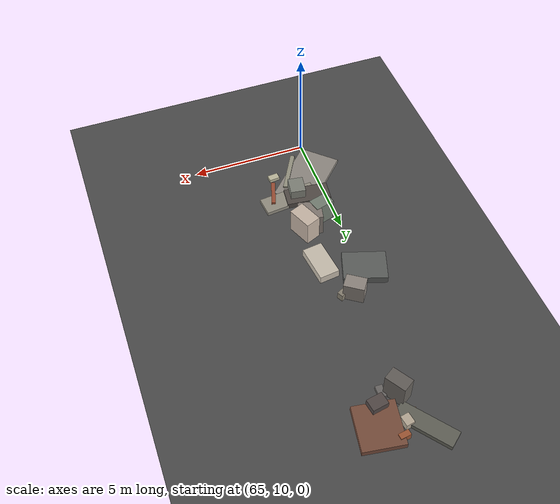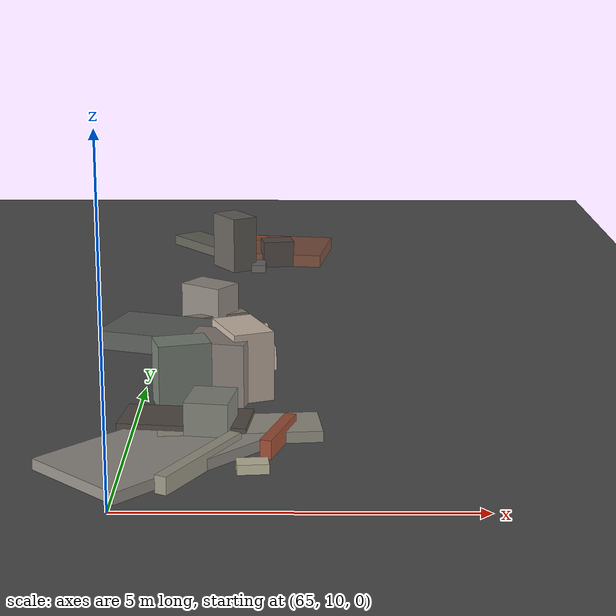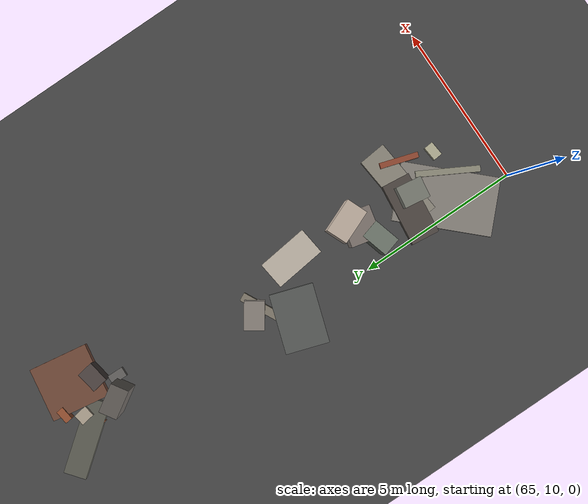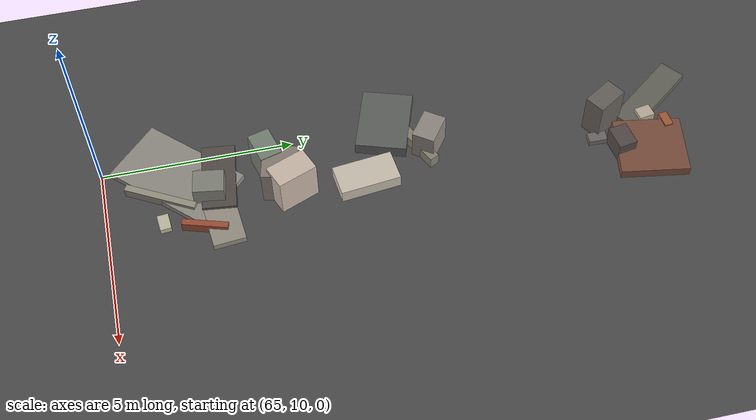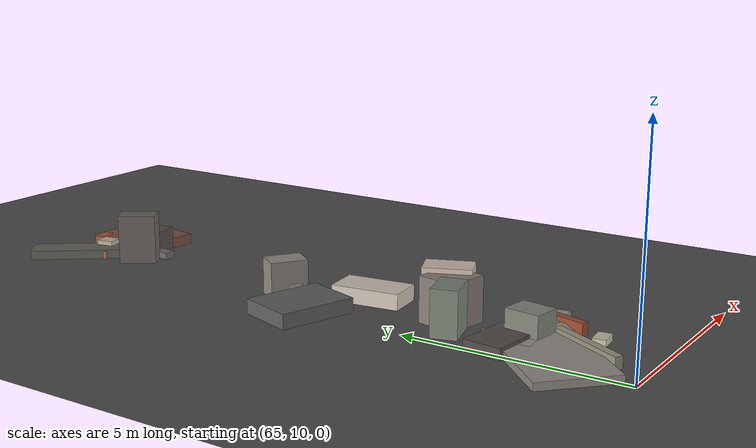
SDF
<sdf version="1.6">
 <world name="navitas_arena">
  <model name="ground_plane">
   <static>true</static>
   <link name="link">
    <collision name="collision">
     <geometry><plane><normal>0 0 1</normal><size>400 400</size></plane></geometry>
     <surface><friction><ode><mu>0.800</mu><mu2>0.800</mu2></ode></friction></surface>
    </collision>
    <visual name="visual">
     <cast_shadows>false</cast_shadows>
     <geometry><plane><normal>0 0 1</normal><size>400 400</size></plane></geometry>
     <material>
      <specular>0.04 0.04 0.04 1</specular>
      <script>
       <uri>file://media/materials/scripts/navitas_asphalt.material</uri>
       <name>Navitas/RealArenaAsphalt</name>
      </script>
     </material>
    </visual>
   </link>
  </model>
  <model name="deb_zor_38">
   <static>true</static>
   <pose>66.263 14.113 0.000 0 0 0</pose>
   <link name="link">
    <collision name="col_0">
     <pose>-0.014 0.450 0.514 0.000 0.000 1.350</pose>
     <geometry><box><size>0.908 0.976 1.027</size></box></geometry>
    </collision>
    <visual name="vis_0">
     <pose>-0.014 0.450 0.514 0.000 0.000 1.350</pose>
     <geometry><box><size>0.908 0.976 1.027</size></box></geometry>
     <material>
      <ambient>0.49 0.45 0.43 1</ambient>
      <diffuse>0.53 0.49 0.46 1</diffuse>
      <specular>0.05 0.05 0.045 1</specular>
     </material>
    </visual>
    <collision name="col_1">
     <pose>0.321 0.701 0.568 0.000 0.000 1.958</pose>
     <geometry><box><size>1.072 0.663 1.136</size></box></geometry>
    </collision>
    <visual name="vis_1">
     <pose>0.321 0.701 0.568 0.000 0.000 1.958</pose>
     <geometry><box><size>1.072 0.663 1.136</size></box></geometry>
     <material>
      <ambient>0.74 0.67 0.62 1</ambient>
      <diffuse>0.80 0.73 0.67 1</diffuse>
      <specular>0.05 0.05 0.045 1</specular>
     </material>
    </visual>
    <collision name="col_2">
     <pose>-0.027 0.752 0.163 0.000 0.000 -0.057</pose>
     <geometry><box><size>0.213 0.409 0.326</size></box></geometry>
    </collision>
    <visual name="vis_2">
     <pose>-0.027 0.752 0.163 0.000 0.000 -0.057</pose>
     <geometry><box><size>0.213 0.409 0.326</size></box></geometry>
     <material>
      <ambient>0.66 0.41 0.30 1</ambient>
      <diffuse>0.72 0.44 0.33 1</diffuse>
      <specular>0.05 0.05 0.045 1</specular>
     </material>
    </visual>
    <collision name="col_3">
     <pose>-0.617 0.162 0.523 0.000 0.000 0.273</pose>
     <geometry><box><size>0.843 0.582 1.046</size></box></geometry>
    </collision>
    <visual name="vis_3">
     <pose>-0.617 0.162 0.523 0.000 0.000 0.273</pose>
     <geometry><box><size>0.843 0.582 1.046</size></box></geometry>
     <material>
      <ambient>0.44 0.47 0.42 1</ambient>
      <diffuse>0.47 0.51 0.46 1</diffuse>
      <specular>0.05 0.05 0.045 1</specular>
     </material>
    </visual>
   </link>
  </model>
  <model name="deb_zor_51">
   <static>true</static>
   <pose>66.531 23.766 0.000 0 0 0</pose>
   <link name="link">
    <collision name="col_0">
     <pose>0.085 -0.819 0.080 0.000 0.000 1.551</pose>
     <geometry><box><size>0.497 0.290 0.160</size></box></geometry>
    </collision>
    <visual name="vis_0">
     <pose>0.085 -0.819 0.080 0.000 0.000 1.551</pose>
     <geometry><box><size>0.497 0.290 0.160</size></box></geometry>
     <material>
      <ambient>0.39 0.38 0.37 1</ambient>
      <diffuse>0.42 0.41 0.40 1</diffuse>
      <specular>0.05 0.05 0.045 1</specular>
     </material>
    </visual>
    <collision name="col_1">
     <pose>0.718 0.444 0.129 0.000 0.000 1.413</pose>
     <geometry><box><size>1.799 1.667 0.257</size></box></geometry>
    </collision>
    <visual name="vis_1">
     <pose>0.718 0.444 0.129 0.000 0.000 1.413</pose>
     <geometry><box><size>1.799 1.667 0.257</size></box></geometry>
     <material>
      <ambient>0.45 0.28 0.22 1</ambient>
      <diffuse>0.48 0.31 0.24 1</diffuse>
      <specular>0.05 0.05 0.045 1</specular>
     </material>
    </visual>
    <collision name="col_2">
     <pose>0.470 -0.287 0.275 0.000 0.000 0.168</pose>
     <geometry><box><size>0.660 0.502 0.550</size></box></geometry>
    </collision>
    <visual name="vis_2">
     <pose>0.470 -0.287 0.275 0.000 0.000 0.168</pose>
     <geometry><box><size>0.660 0.502 0.550</size></box></geometry>
     <material>
      <ambient>0.30 0.27 0.26 1</ambient>
      <diffuse>0.33 0.29 0.28 1</diffuse>
      <specular>0.05 0.05 0.045 1</specular>
     </material>
    </visual>
    <collision name="col_3">
     <pose>0.202 0.413 0.091 0.000 0.000 0.106</pose>
     <geometry><box><size>2.108 0.191 0.182</size></box></geometry>
    </collision>
    <visual name="vis_3">
     <pose>0.202 0.413 0.091 0.000 0.000 0.106</pose>
     <geometry><box><size>2.108 0.191 0.182</size></box></geometry>
     <material>
      <ambient>0.62 0.38 0.26 1</ambient>
      <diffuse>0.67 0.41 0.28 1</diffuse>
      <specular>0.05 0.05 0.045 1</specular>
     </material>
    </visual>
   </link>
  </model>
  <model name="deb_zor_81">
   <static>true</static>
   <pose>66.184 17.626 0.000 0 0 0</pose>
   <link name="link">
    <collision name="col_0">
     <pose>-0.636 0.461 0.164 0.000 0.000 0.466</pose>
     <geometry><box><size>2.081 0.260 0.328</size></box></geometry>
    </collision>
    <visual name="vis_0">
     <pose>-0.636 0.461 0.164 0.000 0.000 0.466</pose>
     <geometry><box><size>2.081 0.260 0.328</size></box></geometry>
     <material>
      <ambient>0.50 0.47 0.42 1</ambient>
      <diffuse>0.54 0.51 0.45 1</diffuse>
      <specular>0.05 0.05 0.045 1</specular>
     </material>
    </visual>
    <collision name="col_1">
     <pose>0.404 -0.907 0.183 0.000 0.000 1.689</pose>
     <geometry><box><size>1.591 0.853 0.366</size></box></geometry>
    </collision>
    <visual name="vis_1">
     <pose>0.404 -0.907 0.183 0.000 0.000 1.689</pose>
     <geometry><box><size>1.591 0.853 0.366</size></box></geometry>
     <material>
      <ambient>0.74 0.71 0.64 1</ambient>
      <diffuse>0.80 0.76 0.70 1</diffuse>
      <specular>0.05 0.05 0.045 1</specular>
     </material>
    </visual>
    <collision name="col_2">
     <pose>-1.197 -0.100 0.169 0.000 0.000 2.825</pose>
     <geometry><box><size>1.813 1.341 0.338</size></box></geometry>
    </collision>
    <visual name="vis_2">
     <pose>-1.197 -0.100 0.169 0.000 0.000 2.825</pose>
     <geometry><box><size>1.813 1.341 0.338</size></box></geometry>
     <material>
      <ambient>0.34 0.35 0.34 1</ambient>
      <diffuse>0.37 0.38 0.37 1</diffuse>
      <specular>0.05 0.05 0.045 1</specular>
     </material>
    </visual>
    <collision name="col_3">
     <pose>-0.349 0.916 0.428 0.000 0.000 0.958</pose>
     <geometry><box><size>0.603 0.852 0.856</size></box></geometry>
    </collision>
    <visual name="vis_3">
     <pose>-0.349 0.916 0.428 0.000 0.000 0.958</pose>
     <geometry><box><size>0.603 0.852 0.856</size></box></geometry>
     <material>
      <ambient>0.53 0.50 0.47 1</ambient>
      <diffuse>0.57 0.54 0.51 1</diffuse>
      <specular>0.05 0.05 0.045 1</specular>
     </material>
    </visual>
    <collision name="col_4">
     <pose>-0.940 -0.363 0.099 0.000 0.000 1.712</pose>
     <geometry><box><size>0.463 0.361 0.199</size></box></geometry>
    </collision>
    <visual name="vis_4">
     <pose>-0.940 -0.363 0.099 0.000 0.000 1.712</pose>
     <geometry><box><size>0.463 0.361 0.199</size></box></geometry>
     <material>
      <ambient>0.51 0.53 0.48 1</ambient>
      <diffuse>0.55 0.58 0.51 1</diffuse>
      <specular>0.05 0.05 0.045 1</specular>
     </material>
    </visual>
    <collision name="col_5">
     <pose>-1.037 -0.311 0.159 0.000 0.000 2.145</pose>
     <geometry><box><size>0.408 0.187 0.318</size></box></geometry>
    </collision>
    <visual name="vis_5">
     <pose>-1.037 -0.311 0.159 0.000 0.000 2.145</pose>
     <geometry><box><size>0.408 0.187 0.318</size></box></geometry>
     <material>
      <ambient>0.67 0.64 0.55 1</ambient>
      <diffuse>0.72 0.69 0.59 1</diffuse>
      <specular>0.05 0.05 0.045 1</specular>
     </material>
    </visual>
    <collision name="col_6">
     <pose>-0.909 -0.117 0.151 0.000 0.000 0.991</pose>
     <geometry><box><size>1.229 0.162 0.302</size></box></geometry>
    </collision>
    <visual name="vis_6">
     <pose>-0.909 -0.117 0.151 0.000 0.000 0.991</pose>
     <geometry><box><size>1.229 0.162 0.302</size></box></geometry>
     <material>
      <ambient>0.58 0.31 0.19 1</ambient>
      <diffuse>0.62 0.34 0.20 1</diffuse>
      <specular>0.05 0.05 0.045 1</specular>
     </material>
    </visual>
   </link>
  </model>
  <model name="deb_zor_129">
   <static>true</static>
   <pose>66.233 23.984 0.000 0 0 0</pose>
   <link name="link">
    <collision name="col_0">
     <pose>-0.144 -0.776 0.581 0.000 0.000 2.134</pose>
     <geometry><box><size>0.881 0.554 1.162</size></box></geometry>
    </collision>
    <visual name="vis_0">
     <pose>-0.144 -0.776 0.581 0.000 0.000 2.134</pose>
     <geometry><box><size>0.881 0.554 1.162</size></box></geometry>
     <material>
      <ambient>0.37 0.35 0.33 1</ambient>
      <diffuse>0.40 0.38 0.36 1</diffuse>
      <specular>0.05 0.05 0.045 1</specular>
     </material>
    </visual>
    <collision name="col_1">
     <pose>-0.631 0.736 0.106 0.000 0.000 2.235</pose>
     <geometry><box><size>2.347 0.691 0.212</size></box></geometry>
    </collision>
    <visual name="vis_1">
     <pose>-0.631 0.736 0.106 0.000 0.000 2.235</pose>
     <geometry><box><size>2.347 0.691 0.212</size></box></geometry>
     <material>
      <ambient>0.36 0.37 0.33 1</ambient>
      <diffuse>0.39 0.39 0.35 1</diffuse>
      <specular>0.05 0.05 0.045 1</specular>
     </material>
    </visual>
    <collision name="col_2">
     <pose>-0.266 0.560 0.078 0.000 0.000 2.288</pose>
     <geometry><box><size>2.115 0.319 0.156</size></box></geometry>
    </collision>
    <visual name="vis_2">
     <pose>-0.266 0.560 0.078 0.000 0.000 2.288</pose>
     <geometry><box><size>2.115 0.319 0.156</size></box></geometry>
     <material>
      <ambient>0.41 0.39 0.38 1</ambient>
      <diffuse>0.44 0.42 0.41 1</diffuse>
      <specular>0.05 0.05 0.045 1</specular>
     </material>
    </visual>
    <collision name="col_3">
     <pose>0.304 0.877 0.150 0.000 0.000 3.266</pose>
     <geometry><box><size>0.427 0.230 0.300</size></box></geometry>
    </collision>
    <visual name="vis_3">
     <pose>0.304 0.877 0.150 0.000 0.000 3.266</pose>
     <geometry><box><size>0.427 0.230 0.300</size></box></geometry>
     <material>
      <ambient>0.59 0.33 0.19 1</ambient>
      <diffuse>0.64 0.35 0.21 1</diffuse>
      <specular>0.05 0.05 0.045 1</specular>
     </material>
    </visual>
    <collision name="col_4">
     <pose>-0.028 0.393 0.161 0.000 0.000 3.307</pose>
     <geometry><box><size>0.354 0.425 0.322</size></box></geometry>
    </collision>
    <visual name="vis_4">
     <pose>-0.028 0.393 0.161 0.000 0.000 3.307</pose>
     <geometry><box><size>0.354 0.425 0.322</size></box></geometry>
     <material>
      <ambient>0.68 0.63 0.56 1</ambient>
      <diffuse>0.73 0.68 0.60 1</diffuse>
      <specular>0.05 0.05 0.045 1</specular>
     </material>
    </visual>
   </link>
  </model>
  <model name="deb_zor_380">
   <static>true</static>
   <pose>66.233 12.127 0.000 0 0 0</pose>
   <link name="link">
    <collision name="col_0">
     <pose>0.609 -0.684 0.074 0.000 0.000 0.095</pose>
     <geometry><box><size>0.453 0.290 0.148</size></box></geometry>
    </collision>
    <visual name="vis_0">
     <pose>0.609 -0.684 0.074 0.000 0.000 0.095</pose>
     <geometry><box><size>0.453 0.290 0.148</size></box></geometry>
     <material>
      <ambient>0.70 0.68 0.58 1</ambient>
      <diffuse>0.76 0.74 0.63 1</diffuse>
      <specular>0.05 0.05 0.045 1</specular>
     </material>
    </visual>
    <collision name="col_1">
     <pose>-0.784 -0.194 0.086 0.000 0.000 0.807</pose>
     <geometry><box><size>2.995 1.780 0.171</size></box></geometry>
    </collision>
    <visual name="vis_1">
     <pose>-0.784 -0.194 0.086 0.000 0.000 0.807</pose>
     <geometry><box><size>2.995 1.780 0.171</size></box></geometry>
     <material>
      <ambient>0.52 0.51 0.48 1</ambient>
      <diffuse>0.57 0.55 0.52 1</diffuse>
      <specular>0.05 0.05 0.045 1</specular>
     </material>
    </visual>
    <collision name="col_2">
     <pose>-0.126 -0.683 0.134 0.000 0.000 1.065</pose>
     <geometry><box><size>1.927 0.186 0.268</size></box></geometry>
    </collision>
    <visual name="vis_2">
     <pose>-0.126 -0.683 0.134 0.000 0.000 1.065</pose>
     <geometry><box><size>1.927 0.186 0.268</size></box></geometry>
     <material>
      <ambient>0.55 0.55 0.48 1</ambient>
      <diffuse>0.60 0.59 0.52 1</diffuse>
      <specular>0.05 0.05 0.045 1</specular>
     </material>
    </visual>
    <collision name="col_3">
     <pose>0.366 0.746 0.086 0.000 0.000 0.098</pose>
     <geometry><box><size>2.421 0.845 0.172</size></box></geometry>
    </collision>
    <visual name="vis_3">
     <pose>0.366 0.746 0.086 0.000 0.000 0.098</pose>
     <geometry><box><size>2.421 0.845 0.172</size></box></geometry>
     <material>
      <ambient>0.55 0.53 0.48 1</ambient>
      <diffuse>0.59 0.57 0.52 1</diffuse>
      <specular>0.05 0.05 0.045 1</specular>
     </material>
    </visual>
    <collision name="col_4">
     <pose>-0.428 0.856 0.126 0.000 0.000 -0.113</pose>
     <geometry><box><size>1.931 0.875 0.252</size></box></geometry>
    </collision>
    <visual name="vis_4">
     <pose>-0.428 0.856 0.126 0.000 0.000 -0.113</pose>
     <geometry><box><size>1.931 0.875 0.252</size></box></geometry>
     <material>
      <ambient>0.30 0.28 0.26 1</ambient>
      <diffuse>0.33 0.30 0.28 1</diffuse>
      <specular>0.05 0.05 0.045 1</specular>
     </material>
    </visual>
    <collision name="col_5">
     <pose>-0.039 0.585 0.338 0.000 0.000 1.423</pose>
     <geometry><box><size>0.794 0.656 0.676</size></box></geometry>
    </collision>
    <visual name="vis_5">
     <pose>-0.039 0.585 0.338 0.000 0.000 1.423</pose>
     <geometry><box><size>0.794 0.656 0.676</size></box></geometry>
     <material>
      <ambient>0.47 0.48 0.44 1</ambient>
      <diffuse>0.51 0.52 0.48 1</diffuse>
      <specular>0.05 0.05 0.045 1</specular>
     </material>
    </visual>
    <collision name="col_6">
     <pose>0.955 0.327 0.142 0.000 0.000 1.270</pose>
     <geometry><box><size>1.183 0.170 0.284</size></box></geometry>
    </collision>
    <visual name="vis_6">
     <pose>0.955 0.327 0.142 0.000 0.000 1.270</pose>
     <geometry><box><size>1.183 0.170 0.284</size></box></geometry>
     <material>
      <ambient>0.57 0.29 0.19 1</ambient>
      <diffuse>0.62 0.31 0.21 1</diffuse>
      <specular>0.05 0.05 0.045 1</specular>
     </material>
    </visual>
   </link>
  </model>
 </world>
</sdf>
